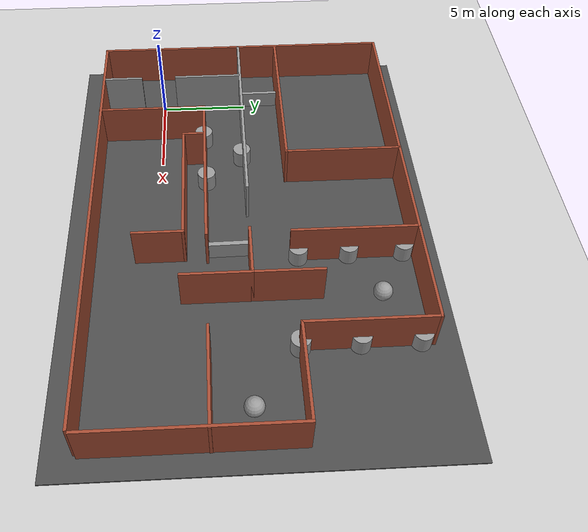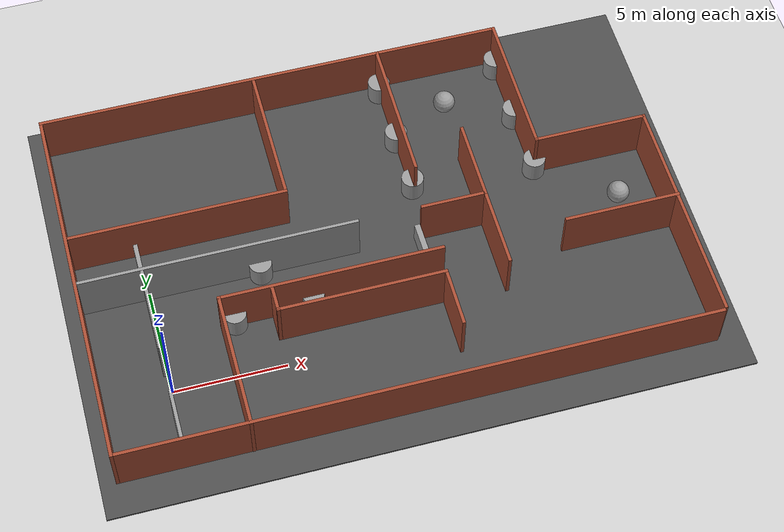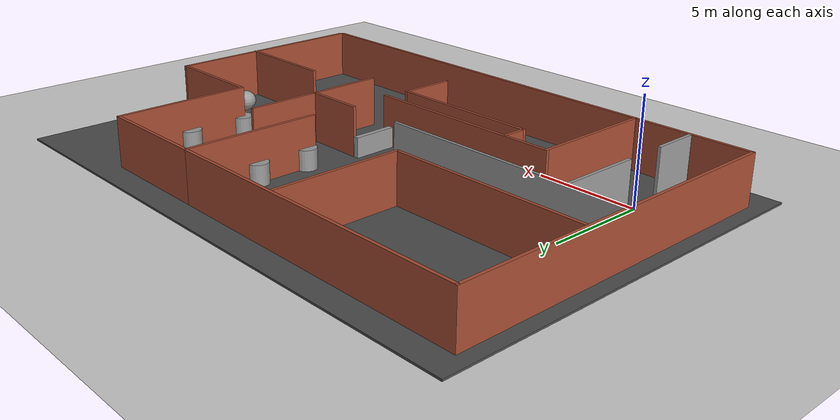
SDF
<sdf version="1.7">
 <world name="default">
  <light name="sun" type="directional">
   <pose>0 0 10 0 -0 0</pose>
   <diffuse>0.8 0.8 0.8 1</diffuse>
   <specular>0.2 0.2 0.2 1</specular>
   <attenuation>
    <range>1000</range>
    <constant>0.9</constant>
    <linear>0.01</linear>
    <quadratic>0.001</quadratic>
   </attenuation>
   <direction>-0.5 0.1 -0.9</direction>
   <spot><inner_angle>0</inner_angle><outer_angle>0</outer_angle><falloff>0</falloff></spot>
  </light>
  <model name="ground_plane">
   <static>1</static>
   <link name="link">
    <collision name="collision">
     <geometry><plane><normal>0 0 1</normal><size>100 100</size></plane></geometry>
     <surface><friction><ode><mu>100</mu><mu2>50</mu2></ode></friction></surface>
    </collision>
    <visual name="visual">
     <cast_shadows>0</cast_shadows>
     <geometry><plane><normal>0 0 1</normal><size>100 100</size></plane></geometry>
     <material>
      <script><uri>file://media/materials/scripts/gazebo.material</uri><name>Gazebo/Grey</name></script>
     </material>
    </visual>
   </link>
  </model>
  <gravity>0 0 -9.8</gravity>
  <magnetic_field>6e-06 2.3e-05 -4.2e-05</magnetic_field>
  <atmosphere type="adiabatic"/>
  <physics type="ode">
   <max_step_size>0.001</max_step_size>
   <real_time_factor>1</real_time_factor>
   <real_time_update_rate>1000</real_time_update_rate>
  </physics>
  <scene><ambient>0.4 0.4 0.4 1</ambient><background>0.7 0.7 0.7 1</background><shadows>1</shadows></scene>
  <audio><device>default</device></audio>
  <spherical_coordinates>
   <surface_model>EARTH_WGS84</surface_model>
   <latitude_deg>0</latitude_deg>
   <longitude_deg>0</longitude_deg>
   <elevation>0</elevation>
   <heading_deg>0</heading_deg>
  </spherical_coordinates>
  <model name="asphalt_plane">
   <static>1</static>
   <link name="link">
    <collision name="collision"><geometry><box><size>0 0 0.1</size></box></geometry></collision>
    <visual name="visual">
     <cast_shadows>0</cast_shadows>
     <geometry><box><size>0 0 0.1</size></box></geometry>
     <material>
      <script>
       <uri>model://asphalt_plane/materials/scripts</uri>
       <uri>model://asphalt_plane/materials/textures</uri>
       <name>vrc/asphalt</name>
      </script>
     </material>
    </visual>
   </link>
   <pose>-0.239334 0.1023 0 0 -0 0</pose>
  </model>
  <model name="asphalt_plane_0">
   <static>1</static>
   <link name="link">
    <collision name="collision"><geometry><box><size>28.1787 20 0.1</size></box></geometry></collision>
    <visual name="visual">
     <cast_shadows>0</cast_shadows>
     <geometry><box><size>28.1787 20 0.1</size></box></geometry>
     <material>
      <script>
       <uri>model://asphalt_plane/materials/scripts</uri>
       <uri>model://asphalt_plane/materials/textures</uri>
       <name>vrc/asphalt</name>
      </script>
     </material>
    </visual>
   </link>
   <pose>10.3103 4.89227 0 0 -0 0</pose>
  </model>
  <model name="Frontier">
   <pose>10.117 5.00234 0 0 -0 0</pose>
   <link name="Wall_11">
    <collision name="Wall_11_Collision">
     <geometry><box><size>15.75 0.15 2.5</size></box></geometry>
     <pose>0 0 1.25 0 -0 0</pose>
    </collision>
    <visual name="Wall_11_Visual">
     <pose>0 0 1.25 0 -0 0</pose>
     <geometry><box><size>15.75 0.15 2.5</size></box></geometry>
     <material>
      <script><uri>file://media/materials/scripts/gazebo.material</uri><name>Gazebo/Bricks</name></script>
      <ambient>1 1 1 1</ambient>
     </material>
     <meta><layer>0</layer></meta>
    </visual>
    <pose>-5.33966 8.55766 0 0 -0 3.14159</pose>
   </link>
   <link name="Wall_12">
    <collision name="Wall_12_Collision">
     <geometry><box><size>17.25 0.15 2.5</size></box></geometry>
     <pose>0 0 1.25 0 -0 0</pose>
    </collision>
    <visual name="Wall_12_Visual">
     <pose>0 0 1.25 0 -0 0</pose>
     <geometry><box><size>17.25 0.15 2.5</size></box></geometry>
     <material>
      <script><uri>file://media/materials/scripts/gazebo.material</uri><name>Gazebo/Bricks</name></script>
      <ambient>1 1 1 1</ambient>
     </material>
     <meta><layer>0</layer></meta>
    </visual>
    <pose>-13.1397 0.007655 0 0 -0 -1.5708</pose>
   </link>
   <link name="Wall_16">
    <collision name="Wall_16_Collision">
     <geometry><box><size>26.25 0.15 2.5</size></box></geometry>
     <pose>0 0 1.25 0 -0 0</pose>
    </collision>
    <visual name="Wall_16_Visual">
     <pose>0 0 1.25 0 -0 0</pose>
     <geometry><box><size>26.25 0.15 2.5</size></box></geometry>
     <material>
      <script><uri>file://media/materials/scripts/gazebo.material</uri><name>Gazebo/Bricks</name></script>
      <ambient>1 1 1 1</ambient>
     </material>
     <meta><layer>0</layer></meta>
    </visual>
    <pose>-0.089662 -8.54234 0 0 -0 0</pose>
   </link>
   <link name="Wall_18">
    <collision name="Wall_18_Collision">
     <geometry><box><size>10.5 0.15 2.5</size></box></geometry>
     <pose>0 0 1.25 0 -0 0</pose>
    </collision>
    <visual name="Wall_18_Visual">
     <pose>0 0 1.25 0 -0 0</pose>
     <geometry><box><size>10.5 0.15 2.5</size></box></geometry>
     <material>
      <script><uri>file://media/materials/scripts/gazebo.material</uri><name>Gazebo/Bricks</name></script>
      <ambient>1 1 1 1</ambient>
     </material>
     <meta><layer>0</layer></meta>
    </visual>
    <pose>13.103 -3.21734 0 0 -0 -1.5708</pose>
   </link>
   <link name="Wall_37">
    <collision name="Wall_37_Collision">
     <geometry><box><size>6.5 0.15 2.5</size></box></geometry>
     <pose>0 0 1.25 0 -0 0</pose>
    </collision>
    <visual name="Wall_37_Visual">
     <pose>0 0 1.25 0 -0 0</pose>
     <geometry><box><size>6.5 0.15 2.5</size></box></geometry>
     <material>
      <script><uri>file://media/materials/scripts/gazebo.material</uri><name>Gazebo/Bricks</name></script>
      <ambient>1 1 1 1</ambient>
     </material>
     <meta><layer>0</layer></meta>
    </visual>
    <pose>-3.38278 5.32384 0 0 -0 -1.5708</pose>
   </link>
   <link name="Wall_39">
    <collision name="Wall_39_Collision">
     <geometry><box><size>9.75 0.15 2.5</size></box></geometry>
     <pose>0 0 1.25 0 -0 0</pose>
    </collision>
    <visual name="Wall_39_Visual">
     <pose>0 0 1.25 0 -0 0</pose>
     <geometry><box><size>9.75 0.15 2.5</size></box></geometry>
     <material>
      <script><uri>file://media/materials/scripts/gazebo.material</uri><name>Gazebo/Bricks</name></script>
      <ambient>1 1 1 1</ambient>
     </material>
     <meta><layer>0</layer></meta>
    </visual>
    <pose>-8.18278 2.14884 0 0 -0 3.14159</pose>
   </link>
   <link name="Wall_4">
    <collision name="Wall_4_Collision">
     <geometry><box><size>5.19236 0.15 2.5</size></box></geometry>
     <pose>0 0 1.25 0 -0 0</pose>
    </collision>
    <visual name="Wall_4_Visual">
     <pose>0 0 1.25 0 -0 0</pose>
     <geometry><box><size>5.19236 0.15 2.5</size></box></geometry>
     <material>
      <script><uri>file://media/materials/scripts/gazebo.material</uri><name>Gazebo/Bricks</name></script>
      <ambient>1 1 1 1</ambient>
     </material>
     <meta><layer>0</layer></meta>
    </visual>
    <pose>10.5817 1.95765 0 0 -0 3.14159</pose>
   </link>
   <link name="Wall_46">
    <collision name="Wall_46_Collision">
     <geometry><box><size>5.25 0.15 2.5</size></box></geometry>
     <pose>0 0 1.25 0 -0 0</pose>
    </collision>
    <visual name="Wall_46_Visual">
     <pose>0 0 1.25 0 -0 0</pose>
     <geometry><box><size>5.25 0.15 2.5</size></box></geometry>
     <material>
      <script><uri>file://media/materials/scripts/gazebo.material</uri><name>Gazebo/Bricks</name></script>
      <ambient>1 1 1 1</ambient>
     </material>
     <meta><layer>0</layer></meta>
    </visual>
    <pose>10.5897 -2.46083 0 0 -0 3.14159</pose>
   </link>
   <link name="Wall_52">
    <collision name="Wall_52_Collision">
     <geometry><box><size>10 0.15 2.5</size></box></geometry>
     <pose>0 0 1.25 0 -0 0</pose>
    </collision>
    <visual name="Wall_52_Visual">
     <pose>0 0 1.25 0 -0 0</pose>
     <geometry><box><size>10 0.15 2.5</size></box></geometry>
     <material>
      <script><uri>file://media/materials/scripts/gazebo.material</uri><name>Gazebo/Bricks</name></script>
      <ambient>1 1 1 1</ambient>
     </material>
     <meta><layer>0</layer></meta>
    </visual>
    <pose>-2.47147 -2.45766 0 0 -0 3.14159</pose>
   </link>
   <link name="Wall_56">
    <collision name="Wall_56_Collision">
     <geometry><box><size>6.25 0.15 2.5</size></box></geometry>
     <pose>0 0 1.25 0 -0 0</pose>
    </collision>
    <visual name="Wall_56_Visual">
     <pose>0 0 1.25 0 -0 0</pose>
     <geometry><box><size>6.25 0.15 2.5</size></box></geometry>
     <material>
      <script><uri>file://media/materials/scripts/gazebo.material</uri><name>Gazebo/Bricks</name></script>
      <ambient>1 1 1 1</ambient>
     </material>
     <meta><layer>0</layer></meta>
    </visual>
    <pose>-7.39647 -5.50766 0 0 -0 -1.5708</pose>
   </link>
   <link name="Wall_7">
    <collision name="Wall_7_Collision">
     <geometry><box><size>6.75 0.15 2.5</size></box></geometry>
     <pose>0 0 1.25 0 -0 0</pose>
    </collision>
    <visual name="Wall_7_Visual">
     <pose>0 0 1.25 0 -0 0</pose>
     <geometry><box><size>6.75 0.15 2.5</size></box></geometry>
     <material>
      <script><uri>file://media/materials/scripts/gazebo.material</uri><name>Gazebo/Bricks</name></script>
      <ambient>1 1 1 1</ambient>
     </material>
     <meta><layer>0</layer></meta>
    </visual>
    <pose>8.06034 5.25765 0 0 -0 1.5708</pose>
   </link>
   <link name="Wall_8">
    <collision name="Wall_8_Collision">
     <geometry><box><size>5.75 0.15 2.5</size></box></geometry>
     <pose>0 0 1.25 0 -0 0</pose>
    </collision>
    <visual name="Wall_8_Visual">
     <pose>0 0 1.25 0 -0 0</pose>
     <geometry><box><size>5.75 0.15 2.5</size></box></geometry>
     <material>
      <script><uri>file://media/materials/scripts/gazebo.material</uri><name>Gazebo/Bricks</name></script>
      <ambient>1 1 1 1</ambient>
     </material>
     <meta><layer>0</layer></meta>
    </visual>
    <pose>5.26034 8.55766 0 0 -0 3.14159</pose>
   </link>
   <link name="Wall_9">
    <collision name="Wall_9_Collision">
     <geometry><box><size>6.75 0.15 2.5</size></box></geometry>
     <pose>0 0 1.25 0 -0 0</pose>
    </collision>
    <visual name="Wall_9_Visual">
     <pose>0 0 1.25 0 -0 0</pose>
     <geometry><box><size>6.75 0.15 2.5</size></box></geometry>
     <material>
      <script><uri>file://media/materials/scripts/gazebo.material</uri><name>Gazebo/Bricks</name></script>
      <ambient>1 1 1 1</ambient>
     </material>
     <meta><layer>0</layer></meta>
    </visual>
    <pose>2.46034 5.25765 0 0 -0 -1.5708</pose>
   </link>
   <static>1</static>
  </model>
  <model name="Inner_Frontier">
   <pose>3.17419 0.70688 0 0 -0 0</pose>
   <link name="Wall_60">
    <collision name="Wall_60_Collision">
     <geometry><box><size>12.5 0.15 2.5</size></box></geometry>
     <pose>0 0 1.25 0 -0 0</pose>
    </collision>
    <visual name="Wall_60_Visual">
     <pose>0 0 1.25 0 -0 0</pose>
     <geometry><box><size>12.5 0.15 2.5</size></box></geometry>
     <material>
      <script><uri>file://media/materials/scripts/gazebo.material</uri><name>Gazebo/Grey</name></script>
      <ambient>1 1 1 1</ambient>
     </material>
     <meta><layer>0</layer></meta>
    </visual>
    <pose>-0 4.10151 0 0 -0 0</pose>
   </link>
   <link name="Wall_64">
    <collision name="Wall_64_Collision">
     <geometry><box><size>4 0.15 2.5</size></box></geometry>
     <pose>0 0 1.25 0 -0 0</pose>
    </collision>
    <visual name="Wall_64_Visual">
     <pose>0 0 1.25 0 -0 0</pose>
     <geometry><box><size>4 0.15 2.5</size></box></geometry>
     <material>
      <script><uri>file://media/materials/scripts/gazebo.material</uri><name>Gazebo/Grey</name></script>
      <ambient>1 1 1 1</ambient>
     </material>
     <meta><layer>0</layer></meta>
    </visual>
    <pose>-3.32283 2.10042 0 0 -0 -1.5708</pose>
   </link>
   <link name="Wall_68">
    <collision name="Wall_68_Collision">
     <geometry><box><size>2.25 0.15 2.5</size></box></geometry>
     <pose>0 0 1.25 0 -0 0</pose>
    </collision>
    <visual name="Wall_68_Visual">
     <pose>0 0 1.25 0 -0 0</pose>
     <geometry><box><size>2.25 0.15 2.5</size></box></geometry>
     <material>
      <script><uri>file://media/materials/scripts/gazebo.material</uri><name>Gazebo/Grey</name></script>
      <ambient>1 1 1 1</ambient>
     </material>
     <meta><layer>0</layer></meta>
    </visual>
    <pose>-3.31161 -3.05151 0 0 -0 -1.5708</pose>
   </link>
   <static>1</static>
  </model>
  <model name="unit_cylinder">
   <pose>3.31201 2.48404 0.549989 2e-06 1e-06 0.000225</pose>
   <link name="link">
    <inertial>
     <mass>1</mass>
     <inertia><ixx>0.145833</ixx><ixy>0</ixy><ixz>0</ixz><iyy>0.145833</iyy><iyz>0</iyz><izz>0.125</izz></inertia>
    </inertial>
    <collision name="collision">
     <geometry><cylinder><radius>0.5</radius><length>1</length></cylinder></geometry>
    </collision>
    <visual name="visual">
     <geometry><cylinder><radius>0.5</radius><length>1</length></cylinder></geometry>
     <material>
      <script><name>Gazebo/Grey</name><uri>file://media/materials/scripts/gazebo.material</uri></script>
     </material>
    </visual>
   </link>
  </model>
  <model name="unit_cylinder_0">
   <pose>4.94059 4.69339 0.54999 0 -0 0.000302</pose>
   <link name="link">
    <inertial>
     <mass>1</mass>
     <inertia><ixx>0.145833</ixx><ixy>0</ixy><ixz>0</ixz><iyy>0.145833</iyy><iyz>0</iyz><izz>0.125</izz></inertia>
    </inertial>
    <collision name="collision">
     <geometry><cylinder><radius>0.5</radius><length>1</length></cylinder></geometry>
    </collision>
    <visual name="visual">
     <geometry><cylinder><radius>0.5</radius><length>1</length></cylinder></geometry>
     <material>
      <script><name>Gazebo/Grey</name><uri>file://media/materials/scripts/gazebo.material</uri></script>
     </material>
    </visual>
   </link>
  </model>
  <model name="unit_cylinder_1">
   <pose>6.78997 2.58408 0.550001 -2e-06 0 1.2e-05</pose>
   <link name="link">
    <inertial>
     <mass>1</mass>
     <inertia><ixx>0.145833</ixx><ixy>0</ixy><ixz>0</ixz><iyy>0.145833</iyy><iyz>0</iyz><izz>0.125</izz></inertia>
    </inertial>
    <collision name="collision">
     <geometry><cylinder><radius>0.5</radius><length>1</length></cylinder></geometry>
    </collision>
    <visual name="visual">
     <geometry><cylinder><radius>0.5</radius><length>1</length></cylinder></geometry>
     <material>
      <script><name>Gazebo/Grey</name><uri>file://media/materials/scripts/gazebo.material</uri></script>
     </material>
    </visual>
   </link>
  </model>
  <model name="unit_cylinder_3">
   <pose>12.5755 7.35723 0.54999 0 -0 0.0001</pose>
   <link name="link">
    <inertial>
     <mass>1</mass>
     <inertia><ixx>0.145833</ixx><ixy>0</ixy><ixz>0</ixz><iyy>0.145833</iyy><iyz>0</iyz><izz>0.125</izz></inertia>
    </inertial>
    <collision name="collision">
     <geometry><cylinder><radius>0.5</radius><length>1</length></cylinder></geometry>
    </collision>
    <visual name="visual">
     <geometry><cylinder><radius>0.5</radius><length>1</length></cylinder></geometry>
     <material>
      <script><name>Gazebo/Grey</name><uri>file://media/materials/scripts/gazebo.material</uri></script>
     </material>
    </visual>
   </link>
  </model>
  <model name="unit_cylinder_4">
   <pose>12.5349 10.0476 0.54999 0 -0 0.000352</pose>
   <link name="link">
    <inertial>
     <mass>1</mass>
     <inertia><ixx>0.145833</ixx><ixy>0</ixy><ixz>0</ixz><iyy>0.145833</iyy><iyz>0</iyz><izz>0.125</izz></inertia>
    </inertial>
    <collision name="collision">
     <geometry><cylinder><radius>0.5</radius><length>1</length></cylinder></geometry>
    </collision>
    <visual name="visual">
     <geometry><cylinder><radius>0.5</radius><length>1</length></cylinder></geometry>
     <material>
      <script><name>Gazebo/Grey</name><uri>file://media/materials/scripts/gazebo.material</uri></script>
     </material>
    </visual>
   </link>
  </model>
  <model name="unit_cylinder_5">
   <pose>12.5192 12.9835 0.549999 2e-06 -1e-06 0.000536</pose>
   <link name="link">
    <inertial>
     <mass>1</mass>
     <inertia><ixx>0.145833</ixx><ixy>0</ixy><ixz>0</ixz><iyy>0.145833</iyy><iyz>0</iyz><izz>0.125</izz></inertia>
    </inertial>
    <collision name="collision">
     <geometry><cylinder><radius>0.5</radius><length>1</length></cylinder></geometry>
    </collision>
    <visual name="visual">
     <geometry><cylinder><radius>0.5</radius><length>1</length></cylinder></geometry>
     <material>
      <script><name>Gazebo/Grey</name><uri>file://media/materials/scripts/gazebo.material</uri></script>
     </material>
    </visual>
   </link>
  </model>
  <model name="Inner_Frontier_2_0">
   <pose>7.41034 3.57259 0 0 -0 0</pose>
   <link name="Wall_28">
    <collision name="Wall_28_Collision">
     <geometry><box><size>2.75 0.15 2.5</size></box></geometry>
     <pose>0 0 1.25 0 -0 0</pose>
    </collision>
    <visual name="Wall_28_Visual">
     <pose>0 0 1.25 0 -0 0</pose>
     <geometry><box><size>2.75 0.15 2.5</size></box></geometry>
     <material>
      <script><uri>file://media/materials/scripts/gazebo.material</uri><name>Gazebo/Bricks</name></script>
      <ambient>1 1 1 1</ambient>
     </material>
     <meta><layer>0</layer></meta>
    </visual>
    <pose>4.95486 -3.52159 0 0 -0 1.5708</pose>
   </link>
   <link name="Wall_29">
    <collision name="Wall_29_Collision">
     <geometry><box><size>7.5 0.15 2.5</size></box></geometry>
     <pose>0 0 1.25 0 -0 0</pose>
    </collision>
    <visual name="Wall_29_Visual">
     <pose>0 0 1.25 0 -0 0</pose>
     <geometry><box><size>7.5 0.15 2.5</size></box></geometry>
     <material>
      <script><uri>file://media/materials/scripts/gazebo.material</uri><name>Gazebo/Bricks</name></script>
      <ambient>1 1 1 1</ambient>
     </material>
     <meta><layer>0</layer></meta>
    </visual>
    <pose>1.27986 -2.22159 0 0 -0 3.14159</pose>
   </link>
   <link name="Wall_30">
    <collision name="Wall_30_Collision">
     <geometry><box><size>1.25 0.15 2.5</size></box></geometry>
     <pose>0 0 1.25 0 -0 0</pose>
    </collision>
    <visual name="Wall_30_Visual">
     <pose>0 0 1.25 0 -0 0</pose>
     <geometry><box><size>1.25 0.15 2.5</size></box></geometry>
     <material>
      <script><uri>file://media/materials/scripts/gazebo.material</uri><name>Gazebo/Bricks</name></script>
      <ambient>1 1 1 1</ambient>
     </material>
     <meta><layer>0</layer></meta>
    </visual>
    <pose>-2.39514 -1.67159 0 0 -0 1.5708</pose>
   </link>
   <link name="Wall_33">
    <collision name="Wall_33_Collision">
     <geometry><box><size>3 0.15 2.5</size></box></geometry>
     <pose>0 0 1.25 0 -0 0</pose>
    </collision>
    <visual name="Wall_33_Visual">
     <pose>0 0 1.25 0 -0 0</pose>
     <geometry><box><size>3 0.15 2.5</size></box></geometry>
     <material>
      <script><uri>file://media/materials/scripts/gazebo.material</uri><name>Gazebo/Bricks</name></script>
      <ambient>1 1 1 1</ambient>
     </material>
     <meta><layer>0</layer></meta>
    </visual>
    <pose>6.30464 1.22159 0 0 -0 0</pose>
   </link>
   <link name="Wall_34">
    <collision name="Wall_34_Collision">
     <geometry><box><size>3.75 0.15 2.5</size></box></geometry>
     <pose>0 0 1.25 0 -0 0</pose>
    </collision>
    <visual name="Wall_34_Visual">
     <pose>0 0 1.25 0 -0 0</pose>
     <geometry><box><size>3.75 0.15 2.5</size></box></geometry>
     <material>
      <script><uri>file://media/materials/scripts/gazebo.material</uri><name>Gazebo/Bricks</name></script>
      <ambient>1 1 1 1</ambient>
     </material>
     <meta><layer>0</layer></meta>
    </visual>
    <pose>7.72964 -0.578413 0 0 -0 -1.5708</pose>
   </link>
   <link name="Wall_36">
    <collision name="Wall_36_Collision">
     <geometry><box><size>3.75 0.15 2.5</size></box></geometry>
     <pose>0 0 1.25 0 -0 0</pose>
    </collision>
    <visual name="Wall_36_Visual">
     <pose>0 0 1.25 0 -0 0</pose>
     <geometry><box><size>3.75 0.15 2.5</size></box></geometry>
     <material>
      <script><uri>file://media/materials/scripts/gazebo.material</uri><name>Gazebo/Bricks</name></script>
      <ambient>1 1 1 1</ambient>
     </material>
     <meta><layer>0</layer></meta>
    </visual>
    <pose>7.72964 3.02159 0 0 -0 1.5708</pose>
   </link>
   <static>1</static>
  </model>
  <model name="unit_box">
   <pose>12.0997 3.74047 0.549972 -2.5e-05 1e-06 0.016056</pose>
   <link name="link">
    <inertial>
     <mass>1</mass>
     <inertia>
      <ixx>0.166667</ixx>
      <ixy>0</ixy>
      <ixz>0</ixz>
      <iyy>0.166667</iyy>
      <iyz>0</iyz>
      <izz>0.166667</izz>
     </inertia>
    </inertial>
    <collision name="collision"><geometry><box><size>0.261994 2.23765 1</size></box></geometry></collision>
    <visual name="visual">
     <geometry><box><size>0.261994 2.23765 1</size></box></geometry>
     <material>
      <script><name>Gazebo/Grey</name><uri>file://media/materials/scripts/gazebo.material</uri></script>
     </material>
    </visual>
   </link>
  </model>
  <model name="unit_cylinder_6">
   <pose>18.1871 6.97301 0.550001 -2e-06 2e-06 0.00012</pose>
   <link name="link">
    <inertial>
     <mass>1</mass>
     <inertia><ixx>0.145833</ixx><ixy>0</ixy><ixz>0</ixz><iyy>0.145833</iyy><iyz>0</iyz><izz>0.125</izz></inertia>
    </inertial>
    <collision name="collision">
     <geometry><cylinder><radius>0.5</radius><length>1</length></cylinder></geometry>
    </collision>
    <visual name="visual">
     <geometry><cylinder><radius>0.5</radius><length>1</length></cylinder></geometry>
     <material>
      <script><name>Gazebo/Grey</name><uri>file://media/materials/scripts/gazebo.material</uri></script>
     </material>
    </visual>
   </link>
  </model>
  <model name="unit_sphere">
   <pose>21.3981 4.55785 0.55 0 -0 0</pose>
   <link name="link">
    <inertial>
     <mass>1</mass>
     <inertia><ixx>0.1</ixx><ixy>0</ixy><ixz>0</ixz><iyy>0.1</iyy><iyz>0</iyz><izz>0.1</izz></inertia>
    </inertial>
    <collision name="collision"><geometry><sphere><radius>0.5</radius></sphere></geometry></collision>
    <visual name="visual">
     <geometry><sphere><radius>0.5</radius></sphere></geometry>
     <material>
      <script><name>Gazebo/Grey</name><uri>file://media/materials/scripts/gazebo.material</uri></script>
     </material>
    </visual>
   </link>
  </model>
  <model name="unit_cylinder_2">
   <pose>18.129 9.94526 0.549991 1e-06 -0 8e-06</pose>
   <link name="link">
    <inertial>
     <mass>1</mass>
     <inertia><ixx>0.145833</ixx><ixy>0</ixy><ixz>0</ixz><iyy>0.145833</iyy><iyz>0</iyz><izz>0.125</izz></inertia>
    </inertial>
    <collision name="collision">
     <geometry><cylinder><radius>0.5</radius><length>1</length></cylinder></geometry>
    </collision>
    <visual name="visual">
     <geometry><cylinder><radius>0.5</radius><length>1</length></cylinder></geometry>
     <material>
      <script><name>Gazebo/Grey</name><uri>file://media/materials/scripts/gazebo.material</uri></script>
     </material>
    </visual>
   </link>
  </model>
  <model name="unit_cylinder_7">
   <pose>18.1247 12.9417 0.54999 -0 -0 -0.000481</pose>
   <link name="link">
    <inertial>
     <mass>1</mass>
     <inertia><ixx>0.145833</ixx><ixy>0</ixy><ixz>0</ixz><iyy>0.145833</iyy><iyz>0</iyz><izz>0.125</izz></inertia>
    </inertial>
    <collision name="collision">
     <geometry><cylinder><radius>0.5</radius><length>1</length></cylinder></geometry>
    </collision>
    <visual name="visual">
     <geometry><cylinder><radius>0.5</radius><length>1</length></cylinder></geometry>
     <material>
      <script><name>Gazebo/Grey</name><uri>file://media/materials/scripts/gazebo.material</uri></script>
     </material>
    </visual>
   </link>
  </model>
  <model name="unit_sphere_0">
   <pose>15.2511 11.4756 0.55 0 -0 0</pose>
   <link name="link">
    <inertial>
     <mass>1</mass>
     <inertia><ixx>0.1</ixx><ixy>0</ixy><ixz>0</ixz><iyy>0.1</iyy><iyz>0</iyz><izz>0.1</izz></inertia>
    </inertial>
    <collision name="collision"><geometry><sphere><radius>0.5</radius></sphere></geometry></collision>
    <visual name="visual">
     <geometry><sphere><radius>0.5</radius></sphere></geometry>
     <material>
      <script><name>Gazebo/Grey</name><uri>file://media/materials/scripts/gazebo.material</uri></script>
     </material>
    </visual>
   </link>
  </model>
  <model name="unit_box_0">
   <pose>-0.14231 5.98139 0.549976 2.2e-05 3e-06 8e-06</pose>
   <link name="link">
    <inertial>
     <mass>1</mass>
     <inertia>
      <ixx>0.166667</ixx>
      <ixy>0</ixy>
      <ixz>0</ixz>
      <iyy>0.166667</iyy>
      <iyz>0</iyz>
      <izz>0.166667</izz>
     </inertia>
    </inertial>
    <collision name="collision"><geometry><box><size>0.199084 2.15364 1</size></box></geometry></collision>
    <visual name="visual">
     <geometry><box><size>0.199084 2.15364 1</size></box></geometry>
     <material>
      <script><name>Gazebo/Grey</name><uri>file://media/materials/scripts/gazebo.material</uri></script>
     </material>
    </visual>
   </link>
  </model>
 </world>
</sdf>
